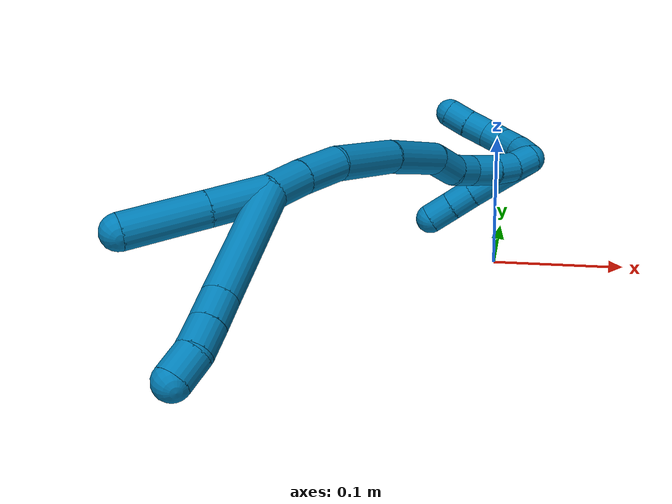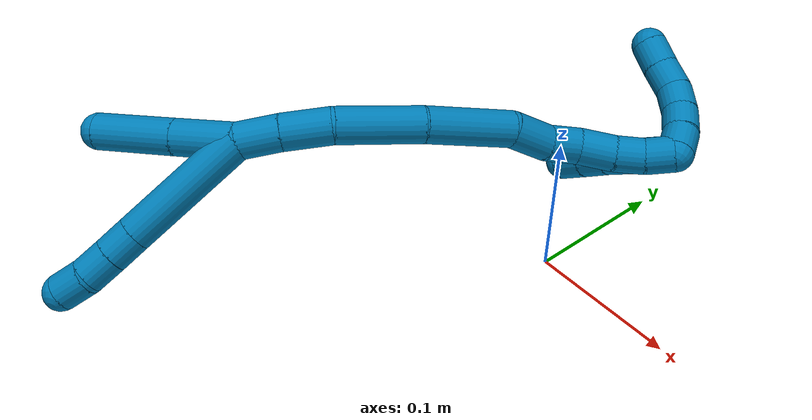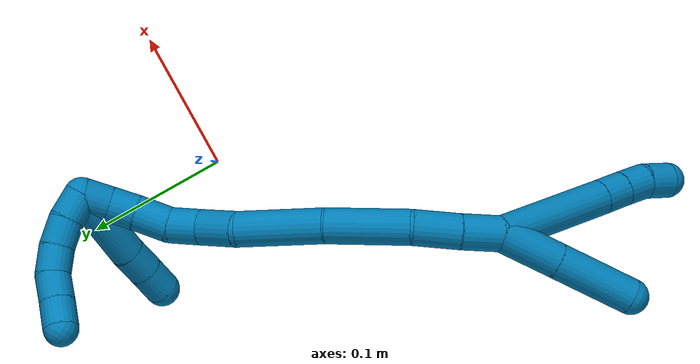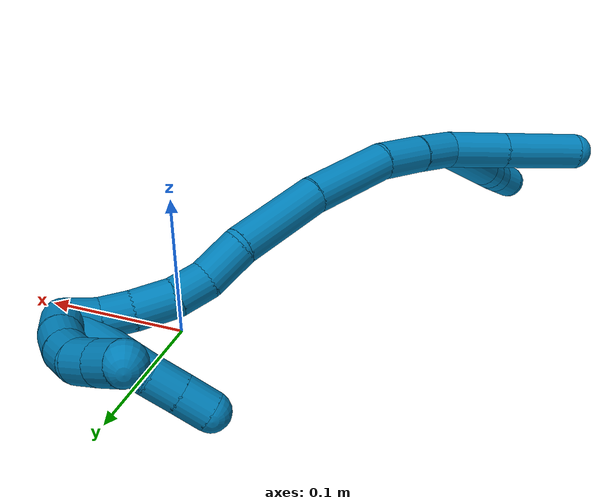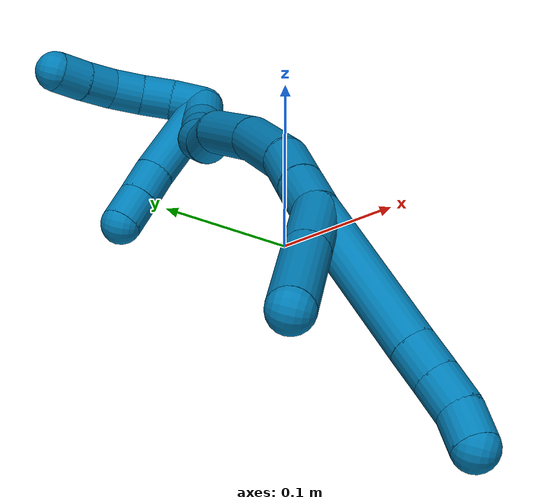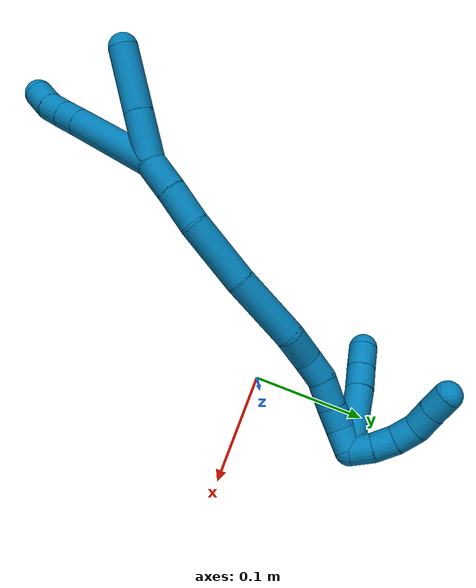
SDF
<sdf version="1.7">
 <world name="default">
  <model name="photoneo_s_sensor">
   <static>1</static>
   <pose>0 0 2 1.57079 1.57079 3.14159</pose>
   <link name="link">
    <inertial><mass>0.1</mass></inertial>
    <sensor name="sensor" type="depth">
     <update_rate>30</update_rate>
     <camera>
      <horizontal_fov>1.22</horizontal_fov>
      <image><width>1920</width><height>1200</height><format>B8G8R8</format></image>
      <clip><near>0.1</near><far>4</far></clip>
      <depth_camera><output>points</output></depth_camera>
     </camera>
     <plugin name="camera_plugin" filename="libgazebo_ros_depth_camera.so">
      <baseline>0.2</baseline>
      <alwaysOn>1</alwaysOn>
      <updateRate>0.0</updateRate>
      <cameraName>camera_ir</cameraName>
      <imageTopicName>/camera/color/image_raw</imageTopicName>
      <cameraInfoTopicName>/camera/color/camera_info</cameraInfoTopicName>
      <depthImageTopicName>/camera/depth/image_raw</depthImageTopicName>
      <depthImageCameraInfoTopicName>/camera/depth/camera_info</depthImageCameraInfoTopicName>
      <pointCloudTopicName>/camera/depth/points</pointCloudTopicName>
      <frameName>fr_optical</frameName>
      <pointCloudCutoff>0.1</pointCloudCutoff>
      <pointCloudCutoffMax>2.0</pointCloudCutoffMax>
      <distortionK1>0</distortionK1>
      <distortionK2>0</distortionK2>
      <distortionK3>0</distortionK3>
      <distortionT1>0</distortionT1>
      <distortionT2>0</distortionT2>
      <CxPrime>0</CxPrime>
      <Cx>0</Cx>
      <Cy>0</Cy>
      <focalLength>0</focalLength>
      <hackBaseline>0</hackBaseline>
     </plugin>
    </sensor>
   </link>
  </model>
  <model name="bin">
   <static>1</static>
   <link name="bottom">
    <collision name="collision-bottom">
     <pose>0 0 -0.01 0 -0 0</pose>
     <geometry><box><size>0.8 0.6 0.02</size></box></geometry>
     <surface>
      <friction><ode><mu>100</mu><mu2>100</mu2></ode></friction>
      <contact><collide_bitmask>65535</collide_bitmask></contact>
     </surface>
    </collision>
   </link>
   <link name="west_wall">
    <collision name="collision-west_wall">
     <pose>-0.41 0 0.1 0 -0 0</pose>
     <geometry><box><size>0.02 0.6 0.2</size></box></geometry>
     <surface>
      <friction><ode><mu>100</mu><mu2>100</mu2></ode></friction>
      <contact><collide_bitmask>65535</collide_bitmask></contact>
     </surface>
    </collision>
   </link>
   <link name="east_wall">
    <collision name="collision-east_wall">
     <pose>0.41 0 0.1 0 -0 0</pose>
     <geometry><box><size>0.02 0.6 0.2</size></box></geometry>
     <surface>
      <friction><ode><mu>100</mu><mu2>100</mu2></ode></friction>
      <contact><collide_bitmask>65535</collide_bitmask></contact>
     </surface>
    </collision>
   </link>
   <link name="south_wall">
    <collision name="collision-south_wall">
     <pose>0 -0.31 0.1 0 -0 0</pose>
     <geometry><box><size>0.8 0.02 0.2</size></box></geometry>
     <surface>
      <friction><ode><mu>100</mu><mu2>100</mu2></ode></friction>
      <contact><collide_bitmask>65535</collide_bitmask></contact>
     </surface>
    </collision>
   </link>
   <link name="north_wall">
    <collision name="collision-north_wall">
     <pose>0 0.31 0.1 0 -0 0</pose>
     <geometry><box><size>0.8 0.02 0.2</size></box></geometry>
     <surface>
      <friction><ode><mu>100</mu><mu2>100</mu2></ode></friction>
      <contact><collide_bitmask>65535</collide_bitmask></contact>
     </surface>
    </collision>
   </link>
  </model>
  <model name="9">
   <static>0</static>
   <link name="9">
    <collision name="collision-cylinder-e_1_2_8">
     <pose>-0.00435 -0.02983 0.03221 0.747044 -0.098775 -0.038738</pose>
     <geometry><cylinder><radius>0.0125</radius><length>0.088233</length></cylinder></geometry>
     <surface>
      <friction><ode><mu>1.16</mu><mu2>1.16</mu2><slip1>0</slip1><slip2>0</slip2></ode></friction>
      <contact><ode><kp>1e+06</kp><kd>1</kd><max_vel>0</max_vel><min_depth>0.001</min_depth></ode></contact>
     </surface>
    </collision>
    <visual name="visual-cylinder-e_1_2_8">
     <pose>-0.00435 -0.02983 0.03221 0.747044 -0.098775 -0.038738</pose>
     <geometry><cylinder><radius>0.0125</radius><length>0.088233</length></cylinder></geometry>
     <material><ambient>0 0.490196 0.709804 1</ambient></material>
    </visual>
    <collision name="collision-cylinder-e_2_8_9">
     <pose>-0.00968 -0.066446 0.071956 0.733119 -0.096293 -0.036992</pose>
     <geometry><cylinder><radius>0.0125</radius><length>0.020376</length></cylinder></geometry>
     <surface>
      <friction><ode><mu>1.16</mu><mu2>1.16</mu2><slip1>0</slip1><slip2>0</slip2></ode></friction>
      <contact><ode><kp>1e+06</kp><kd>1</kd><max_vel>0</max_vel><min_depth>0.001</min_depth></ode></contact>
     </surface>
    </collision>
    <visual name="visual-cylinder-e_2_8_9">
     <pose>-0.00968 -0.066446 0.071956 0.733119 -0.096293 -0.036992</pose>
     <geometry><cylinder><radius>0.0125</radius><length>0.020376</length></cylinder></geometry>
     <material><ambient>0 0.490196 0.709804 1</ambient></material>
    </visual>
    <collision name="collision-cylinder-e_3_9_10">
     <pose>-0.011788 -0.08018 0.086973 0.74854 -0.110029 -0.043254</pose>
     <geometry><cylinder><radius>0.0125</radius><length>0.020545</length></cylinder></geometry>
     <surface>
      <friction><ode><mu>1.16</mu><mu2>1.16</mu2><slip1>0</slip1><slip2>0</slip2></ode></friction>
      <contact><ode><kp>1e+06</kp><kd>1</kd><max_vel>0</max_vel><min_depth>0.001</min_depth></ode></contact>
     </surface>
    </collision>
    <visual name="visual-cylinder-e_3_9_10">
     <pose>-0.011788 -0.08018 0.086973 0.74854 -0.110029 -0.043254</pose>
     <geometry><cylinder><radius>0.0125</radius><length>0.020545</length></cylinder></geometry>
     <material><ambient>0 0.490196 0.709804 1</ambient></material>
    </visual>
    <collision name="collision-cylinder-e_4_10_6">
     <pose>-0.014979 -0.095608 0.100155 0.978845 -0.199206 -0.106358</pose>
     <geometry><cylinder><radius>0.0125</radius><length>0.020847</length></cylinder></geometry>
     <surface>
      <friction><ode><mu>1.16</mu><mu2>1.16</mu2><slip1>0</slip1><slip2>0</slip2></ode></friction>
      <contact><ode><kp>1e+06</kp><kd>1</kd><max_vel>0</max_vel><min_depth>0.001</min_depth></ode></contact>
     </surface>
    </collision>
    <visual name="visual-cylinder-e_4_10_6">
     <pose>-0.014979 -0.095608 0.100155 0.978845 -0.199206 -0.106358</pose>
     <geometry><cylinder><radius>0.0125</radius><length>0.020847</length></cylinder></geometry>
     <material><ambient>0 0.490196 0.709804 1</ambient></material>
    </visual>
    <collision name="collision-cylinder-e_1_2_11">
     <pose>-0.013077 -0.016773 0.002215 1.43951 -0.658038 -0.581642</pose>
     <geometry><cylinder><radius>0.0125</radius><length>0.042766</length></cylinder></geometry>
     <surface>
      <friction><ode><mu>1.16</mu><mu2>1.16</mu2><slip1>0</slip1><slip2>0</slip2></ode></friction>
      <contact><ode><kp>1e+06</kp><kd>1</kd><max_vel>0</max_vel><min_depth>0.001</min_depth></ode></contact>
     </surface>
    </collision>
    <visual name="visual-cylinder-e_1_2_11">
     <pose>-0.013077 -0.016773 0.002215 1.43951 -0.658038 -0.581642</pose>
     <geometry><cylinder><radius>0.0125</radius><length>0.042766</length></cylinder></geometry>
     <material><ambient>0 0.490196 0.709804 1</ambient></material>
    </visual>
    <collision name="collision-cylinder-e_2_11_5">
     <pose>-0.04375 -0.055927 0.007322 1.4423 -0.662237 -0.586973</pose>
     <geometry><cylinder><radius>0.0125</radius><length>0.057234</length></cylinder></geometry>
     <surface>
      <friction><ode><mu>1.16</mu><mu2>1.16</mu2><slip1>0</slip1><slip2>0</slip2></ode></friction>
      <contact><ode><kp>1e+06</kp><kd>1</kd><max_vel>0</max_vel><min_depth>0.001</min_depth></ode></contact>
     </surface>
    </collision>
    <visual name="visual-cylinder-e_2_11_5">
     <pose>-0.04375 -0.055927 0.007322 1.4423 -0.662237 -0.586973</pose>
     <geometry><cylinder><radius>0.0125</radius><length>0.057234</length></cylinder></geometry>
     <material><ambient>0 0.490196 0.709804 1</ambient></material>
    </visual>
    <collision name="collision-cylinder-e_1_2_12">
     <pose>0.008123 0.009772 -0.006872 -2.1837 0.597161 -1.0701</pose>
     <geometry><cylinder><radius>0.0125</radius><length>0.028893</length></cylinder></geometry>
     <surface>
      <friction><ode><mu>1.16</mu><mu2>1.16</mu2><slip1>0</slip1><slip2>0</slip2></ode></friction>
      <contact><ode><kp>1e+06</kp><kd>1</kd><max_vel>0</max_vel><min_depth>0.001</min_depth></ode></contact>
     </surface>
    </collision>
    <visual name="visual-cylinder-e_1_2_12">
     <pose>0.008123 0.009772 -0.006872 -2.1837 0.597161 -1.0701</pose>
     <geometry><cylinder><radius>0.0125</radius><length>0.028893</length></cylinder></geometry>
     <material><ambient>0 0.490196 0.709804 1</ambient></material>
    </visual>
    <collision name="collision-cylinder-e_2_12_13">
     <pose>0.026506 0.030596 -0.021079 -2.15669 0.658337 -1.13389</pose>
     <geometry><cylinder><radius>0.0125</radius><length>0.033541</length></cylinder></geometry>
     <surface>
      <friction><ode><mu>1.16</mu><mu2>1.16</mu2><slip1>0</slip1><slip2>0</slip2></ode></friction>
      <contact><ode><kp>1e+06</kp><kd>1</kd><max_vel>0</max_vel><min_depth>0.001</min_depth></ode></contact>
     </surface>
    </collision>
    <visual name="visual-cylinder-e_2_12_13">
     <pose>0.026506 0.030596 -0.021079 -2.15669 0.658337 -1.13389</pose>
     <geometry><cylinder><radius>0.0125</radius><length>0.033541</length></cylinder></geometry>
     <material><ambient>0 0.490196 0.709804 1</ambient></material>
    </visual>
    <collision name="collision-cylinder-e_3_13_14">
     <pose>0.058688 0.055938 -0.042182 -2.33764 0.83514 -1.61346</pose>
     <geometry><cylinder><radius>0.0125</radius><length>0.059137</length></cylinder></geometry>
     <surface>
      <friction><ode><mu>1.16</mu><mu2>1.16</mu2><slip1>0</slip1><slip2>0</slip2></ode></friction>
      <contact><ode><kp>1e+06</kp><kd>1</kd><max_vel>0</max_vel><min_depth>0.001</min_depth></ode></contact>
     </surface>
    </collision>
    <visual name="visual-cylinder-e_3_13_14">
     <pose>0.058688 0.055938 -0.042182 -2.33764 0.83514 -1.61346</pose>
     <geometry><cylinder><radius>0.0125</radius><length>0.059137</length></cylinder></geometry>
     <material><ambient>0 0.490196 0.709804 1</ambient></material>
    </visual>
    <collision name="collision-cylinder-e_4_14_15">
     <pose>0.105012 0.081518 -0.070903 -2.49484 0.915958 -1.94739</pose>
     <geometry><cylinder><radius>0.0125</radius><length>0.061531</length></cylinder></geometry>
     <surface>
      <friction><ode><mu>1.16</mu><mu2>1.16</mu2><slip1>0</slip1><slip2>0</slip2></ode></friction>
      <contact><ode><kp>1e+06</kp><kd>1</kd><max_vel>0</max_vel><min_depth>0.001</min_depth></ode></contact>
     </surface>
    </collision>
    <visual name="visual-cylinder-e_4_14_15">
     <pose>0.105012 0.081518 -0.070903 -2.49484 0.915958 -1.94739</pose>
     <geometry><cylinder><radius>0.0125</radius><length>0.061531</length></cylinder></geometry>
     <material><ambient>0 0.490196 0.709804 1</ambient></material>
    </visual>
    <collision name="collision-cylinder-e_5_15_16">
     <pose>0.143015 0.095169 -0.090468 -2.66853 1.20691 -2.46872</pose>
     <geometry><cylinder><radius>0.0125</radius><length>0.029109</length></cylinder></geometry>
     <surface>
      <friction><ode><mu>1.16</mu><mu2>1.16</mu2><slip1>0</slip1><slip2>0</slip2></ode></friction>
      <contact><ode><kp>1e+06</kp><kd>1</kd><max_vel>0</max_vel><min_depth>0.001</min_depth></ode></contact>
     </surface>
    </collision>
    <visual name="visual-cylinder-e_5_15_16">
     <pose>0.143015 0.095169 -0.090468 -2.66853 1.20691 -2.46872</pose>
     <geometry><cylinder><radius>0.0125</radius><length>0.029109</length></cylinder></geometry>
     <material><ambient>0 0.490196 0.709804 1</ambient></material>
    </visual>
    <collision name="collision-cylinder-e_6_16_17">
     <pose>0.165653 0.102385 -0.099579 -2.31822 0.938483 -1.71968</pose>
     <geometry><cylinder><radius>0.0125</radius><length>0.022405</length></cylinder></geometry>
     <surface>
      <friction><ode><mu>1.16</mu><mu2>1.16</mu2><slip1>0</slip1><slip2>0</slip2></ode></friction>
      <contact><ode><kp>1e+06</kp><kd>1</kd><max_vel>0</max_vel><min_depth>0.001</min_depth></ode></contact>
     </surface>
    </collision>
    <visual name="visual-cylinder-e_6_16_17">
     <pose>0.165653 0.102385 -0.099579 -2.31822 0.938483 -1.71968</pose>
     <geometry><cylinder><radius>0.0125</radius><length>0.022405</length></cylinder></geometry>
     <material><ambient>0 0.490196 0.709804 1</ambient></material>
    </visual>
    <collision name="collision-cylinder-e_7_17_18">
     <pose>0.184728 0.114543 -0.106072 -1.83717 0.92476 -1.15645</pose>
     <geometry><cylinder><radius>0.0125</radius><length>0.025145</length></cylinder></geometry>
     <surface>
      <friction><ode><mu>1.16</mu><mu2>1.16</mu2><slip1>0</slip1><slip2>0</slip2></ode></friction>
      <contact><ode><kp>1e+06</kp><kd>1</kd><max_vel>0</max_vel><min_depth>0.001</min_depth></ode></contact>
     </surface>
    </collision>
    <visual name="visual-cylinder-e_7_17_18">
     <pose>0.184728 0.114543 -0.106072 -1.83717 0.92476 -1.15645</pose>
     <geometry><cylinder><radius>0.0125</radius><length>0.025145</length></cylinder></geometry>
     <material><ambient>0 0.490196 0.709804 1</ambient></material>
    </visual>
    <collision name="collision-cylinder-e_8_18_19">
     <pose>0.202023 0.128509 -0.11021 -1.88222 0.803282 -1.05552</pose>
     <geometry><cylinder><radius>0.0125</radius><length>0.020165</length></cylinder></geometry>
     <surface>
      <friction><ode><mu>1.16</mu><mu2>1.16</mu2><slip1>0</slip1><slip2>0</slip2></ode></friction>
      <contact><ode><kp>1e+06</kp><kd>1</kd><max_vel>0</max_vel><min_depth>0.001</min_depth></ode></contact>
     </surface>
    </collision>
    <visual name="visual-cylinder-e_8_18_19">
     <pose>0.202023 0.128509 -0.11021 -1.88222 0.803282 -1.05552</pose>
     <geometry><cylinder><radius>0.0125</radius><length>0.020165</length></cylinder></geometry>
     <material><ambient>0 0.490196 0.709804 1</ambient></material>
    </visual>
    <collision name="collision-cylinder-e_9_19_1">
     <pose>0.214624 0.143309 -0.114803 -1.8631 0.561638 -0.740268</pose>
     <geometry><cylinder><radius>0.0125</radius><length>0.020074</length></cylinder></geometry>
     <surface>
      <friction><ode><mu>1.16</mu><mu2>1.16</mu2><slip1>0</slip1><slip2>0</slip2></ode></friction>
      <contact><ode><kp>1e+06</kp><kd>1</kd><max_vel>0</max_vel><min_depth>0.001</min_depth></ode></contact>
     </surface>
    </collision>
    <visual name="visual-cylinder-e_9_19_1">
     <pose>0.214624 0.143309 -0.114803 -1.8631 0.561638 -0.740268</pose>
     <geometry><cylinder><radius>0.0125</radius><length>0.020074</length></cylinder></geometry>
     <material><ambient>0 0.490196 0.709804 1</ambient></material>
    </visual>
    <collision name="collision-cylinder-e_1_1_20">
     <pose>0.220104 0.151307 -0.127249 3.12795 0.013444 1.55586</pose>
     <geometry><cylinder><radius>0.0125</radius><length>0.02</length></cylinder></geometry>
     <surface>
      <friction><ode><mu>1.16</mu><mu2>1.16</mu2><slip1>0</slip1><slip2>0</slip2></ode></friction>
      <contact><ode><kp>1e+06</kp><kd>1</kd><max_vel>0</max_vel><min_depth>0.001</min_depth></ode></contact>
     </surface>
    </collision>
    <visual name="visual-cylinder-e_1_1_20">
     <pose>0.220104 0.151307 -0.127249 3.12795 0.013444 1.55586</pose>
     <geometry><cylinder><radius>0.0125</radius><length>0.02</length></cylinder></geometry>
     <material><ambient>0 0.490196 0.709804 1</ambient></material>
    </visual>
    <collision name="collision-cylinder-e_2_20_21">
     <pose>0.21886 0.149571 -0.147022 2.97938 -0.138293 -1.41132</pose>
     <geometry><cylinder><radius>0.0125</radius><length>0.02</length></cylinder></geometry>
     <surface>
      <friction><ode><mu>1.16</mu><mu2>1.16</mu2><slip1>0</slip1><slip2>0</slip2></ode></friction>
      <contact><ode><kp>1e+06</kp><kd>1</kd><max_vel>0</max_vel><min_depth>0.001</min_depth></ode></contact>
     </surface>
    </collision>
    <visual name="visual-cylinder-e_2_20_21">
     <pose>0.21886 0.149571 -0.147022 2.97938 -0.138293 -1.41132</pose>
     <geometry><cylinder><radius>0.0125</radius><length>0.02</length></cylinder></geometry>
     <material><ambient>0 0.490196 0.709804 1</ambient></material>
    </visual>
    <collision name="collision-cylinder-e_3_21_22">
     <pose>0.214098 0.145847 -0.165964 2.91384 -0.345157 -1.98023</pose>
     <geometry><cylinder><radius>0.0125</radius><length>0.02</length></cylinder></geometry>
     <surface>
      <friction><ode><mu>1.16</mu><mu2>1.16</mu2><slip1>0</slip1><slip2>0</slip2></ode></friction>
      <contact><ode><kp>1e+06</kp><kd>1</kd><max_vel>0</max_vel><min_depth>0.001</min_depth></ode></contact>
     </surface>
    </collision>
    <visual name="visual-cylinder-e_3_21_22">
     <pose>0.214098 0.145847 -0.165964 2.91384 -0.345157 -1.98023</pose>
     <geometry><cylinder><radius>0.0125</radius><length>0.02</length></cylinder></geometry>
     <material><ambient>0 0.490196 0.709804 1</ambient></material>
    </visual>
    <collision name="collision-cylinder-e_4_22_23">
     <pose>0.204529 0.140936 -0.182477 2.77913 -0.666986 -2.16853</pose>
     <geometry><cylinder><radius>0.0125</radius><length>0.02</length></cylinder></geometry>
     <surface>
      <friction><ode><mu>1.16</mu><mu2>1.16</mu2><slip1>0</slip1><slip2>0</slip2></ode></friction>
      <contact><ode><kp>1e+06</kp><kd>1</kd><max_vel>0</max_vel><min_depth>0.001</min_depth></ode></contact>
     </surface>
    </collision>
    <visual name="visual-cylinder-e_4_22_23">
     <pose>0.204529 0.140936 -0.182477 2.77913 -0.666986 -2.16853</pose>
     <geometry><cylinder><radius>0.0125</radius><length>0.02</length></cylinder></geometry>
     <material><ambient>0 0.490196 0.709804 1</ambient></material>
    </visual>
    <collision name="collision-cylinder-e_5_23_4">
     <pose>0.192032 0.135901 -0.197248 2.84749 -0.682864 -2.35173</pose>
     <geometry><cylinder><radius>0.0125</radius><length>0.02</length></cylinder></geometry>
     <surface>
      <friction><ode><mu>1.16</mu><mu2>1.16</mu2><slip1>0</slip1><slip2>0</slip2></ode></friction>
      <contact><ode><kp>1e+06</kp><kd>1</kd><max_vel>0</max_vel><min_depth>0.001</min_depth></ode></contact>
     </surface>
    </collision>
    <visual name="visual-cylinder-e_5_23_4">
     <pose>0.192032 0.135901 -0.197248 2.84749 -0.682864 -2.35173</pose>
     <geometry><cylinder><radius>0.0125</radius><length>0.02</length></cylinder></geometry>
     <material><ambient>0 0.490196 0.709804 1</ambient></material>
    </visual>
    <collision name="collision-cylinder-e_1_1_24">
     <pose>0.216116 0.123412 -0.124274 1.81628 -0.132597 -0.169755</pose>
     <geometry><cylinder><radius>0.0125</radius><length>0.058307</length></cylinder></geometry>
     <surface>
      <friction><ode><mu>1.16</mu><mu2>1.16</mu2><slip1>0</slip1><slip2>0</slip2></ode></friction>
      <contact><ode><kp>1e+06</kp><kd>1</kd><max_vel>0</max_vel><min_depth>0.001</min_depth></ode></contact>
     </surface>
    </collision>
    <visual name="visual-cylinder-e_1_1_24">
     <pose>0.216116 0.123412 -0.124274 1.81628 -0.132597 -0.169755</pose>
     <geometry><cylinder><radius>0.0125</radius><length>0.058307</length></cylinder></geometry>
     <material><ambient>0 0.490196 0.709804 1</ambient></material>
    </visual>
    <collision name="collision-cylinder-e_2_24_25">
     <pose>0.210679 0.085347 -0.132994 1.73831 -0.15428 -0.182415</pose>
     <geometry><cylinder><radius>0.0125</radius><length>0.020598</length></cylinder></geometry>
     <surface>
      <friction><ode><mu>1.16</mu><mu2>1.16</mu2><slip1>0</slip1><slip2>0</slip2></ode></friction>
      <contact><ode><kp>1e+06</kp><kd>1</kd><max_vel>0</max_vel><min_depth>0.001</min_depth></ode></contact>
     </surface>
    </collision>
    <visual name="visual-cylinder-e_2_24_25">
     <pose>0.210679 0.085347 -0.132994 1.73831 -0.15428 -0.182415</pose>
     <geometry><cylinder><radius>0.0125</radius><length>0.020598</length></cylinder></geometry>
     <material><ambient>0 0.490196 0.709804 1</ambient></material>
    </visual>
    <collision name="collision-cylinder-e_3_25_3">
     <pose>0.207504 0.065067 -0.136624 1.75729 -0.151562 -0.182675</pose>
     <geometry><cylinder><radius>0.0125</radius><length>0.021095</length></cylinder></geometry>
     <surface>
      <friction><ode><mu>1.16</mu><mu2>1.16</mu2><slip1>0</slip1><slip2>0</slip2></ode></friction>
      <contact><ode><kp>1e+06</kp><kd>1</kd><max_vel>0</max_vel><min_depth>0.001</min_depth></ode></contact>
     </surface>
    </collision>
    <visual name="visual-cylinder-e_3_25_3">
     <pose>0.207504 0.065067 -0.136624 1.75729 -0.151562 -0.182675</pose>
     <geometry><cylinder><radius>0.0125</radius><length>0.021095</length></cylinder></geometry>
     <material><ambient>0 0.490196 0.709804 1</ambient></material>
    </visual>
    <collision name="collision-sphere-3">
     <pose>0.205911 0.054821 -0.138557 0 -0 0</pose>
     <geometry><sphere><radius>0.0125</radius></sphere></geometry>
     <surface>
      <friction><ode><mu>1.16</mu><mu2>1.16</mu2><slip1>0</slip1><slip2>0</slip2></ode></friction>
      <contact><ode><kp>1e+06</kp><kd>1</kd><max_vel>0</max_vel><min_depth>0.001</min_depth></ode></contact>
     </surface>
    </collision>
    <visual name="visual-sphere-3">
     <pose>0.205911 0.054821 -0.138557 0 -0 0</pose>
     <geometry><sphere><radius>0.0125</radius></sphere></geometry>
     <material><ambient>0 0.490196 0.709804 1</ambient></material>
    </visual>
    <collision name="collision-sphere-25">
     <pose>0.209096 0.075312 -0.13469 0 -0 0</pose>
     <geometry><sphere><radius>0.0125</radius></sphere></geometry>
     <surface>
      <friction><ode><mu>1.16</mu><mu2>1.16</mu2><slip1>0</slip1><slip2>0</slip2></ode></friction>
      <contact><ode><kp>1e+06</kp><kd>1</kd><max_vel>0</max_vel><min_depth>0.001</min_depth></ode></contact>
     </surface>
    </collision>
    <visual name="visual-sphere-25">
     <pose>0.209096 0.075312 -0.13469 0 -0 0</pose>
     <geometry><sphere><radius>0.0125</radius></sphere></geometry>
     <material><ambient>0 0.490196 0.709804 1</ambient></material>
    </visual>
    <collision name="collision-sphere-24">
     <pose>0.212261 0.095381 -0.131297 0 -0 0</pose>
     <geometry><sphere><radius>0.0125</radius></sphere></geometry>
     <surface>
      <friction><ode><mu>1.16</mu><mu2>1.16</mu2><slip1>0</slip1><slip2>0</slip2></ode></friction>
      <contact><ode><kp>1e+06</kp><kd>1</kd><max_vel>0</max_vel><min_depth>0.001</min_depth></ode></contact>
     </surface>
    </collision>
    <visual name="visual-sphere-24">
     <pose>0.212261 0.095381 -0.131297 0 -0 0</pose>
     <geometry><sphere><radius>0.0125</radius></sphere></geometry>
     <material><ambient>0 0.490196 0.709804 1</ambient></material>
    </visual>
    <collision name="collision-sphere-4">
     <pose>0.185722 0.133652 -0.204673 0 -0 0</pose>
     <geometry><sphere><radius>0.0125</radius></sphere></geometry>
     <surface>
      <friction><ode><mu>1.16</mu><mu2>1.16</mu2><slip1>0</slip1><slip2>0</slip2></ode></friction>
      <contact><ode><kp>1e+06</kp><kd>1</kd><max_vel>0</max_vel><min_depth>0.001</min_depth></ode></contact>
     </surface>
    </collision>
    <visual name="visual-sphere-4">
     <pose>0.185722 0.133652 -0.204673 0 -0 0</pose>
     <geometry><sphere><radius>0.0125</radius></sphere></geometry>
     <material><ambient>0 0.490196 0.709804 1</ambient></material>
    </visual>
    <collision name="collision-sphere-23">
     <pose>0.198343 0.13815 -0.189824 0 -0 0</pose>
     <geometry><sphere><radius>0.0125</radius></sphere></geometry>
     <surface>
      <friction><ode><mu>1.16</mu><mu2>1.16</mu2><slip1>0</slip1><slip2>0</slip2></ode></friction>
      <contact><ode><kp>1e+06</kp><kd>1</kd><max_vel>0</max_vel><min_depth>0.001</min_depth></ode></contact>
     </surface>
    </collision>
    <visual name="visual-sphere-23">
     <pose>0.198343 0.13815 -0.189824 0 -0 0</pose>
     <geometry><sphere><radius>0.0125</radius></sphere></geometry>
     <material><ambient>0 0.490196 0.709804 1</ambient></material>
    </visual>
    <collision name="collision-sphere-22">
     <pose>0.210715 0.143722 -0.175131 0 -0 0</pose>
     <geometry><sphere><radius>0.0125</radius></sphere></geometry>
     <surface>
      <friction><ode><mu>1.16</mu><mu2>1.16</mu2><slip1>0</slip1><slip2>0</slip2></ode></friction>
      <contact><ode><kp>1e+06</kp><kd>1</kd><max_vel>0</max_vel><min_depth>0.001</min_depth></ode></contact>
     </surface>
    </collision>
    <visual name="visual-sphere-22">
     <pose>0.210715 0.143722 -0.175131 0 -0 0</pose>
     <geometry><sphere><radius>0.0125</radius></sphere></geometry>
     <material><ambient>0 0.490196 0.709804 1</ambient></material>
    </visual>
    <collision name="collision-sphere-21">
     <pose>0.217482 0.147971 -0.156797 0 -0 0</pose>
     <geometry><sphere><radius>0.0125</radius></sphere></geometry>
     <surface>
      <friction><ode><mu>1.16</mu><mu2>1.16</mu2><slip1>0</slip1><slip2>0</slip2></ode></friction>
      <contact><ode><kp>1e+06</kp><kd>1</kd><max_vel>0</max_vel><min_depth>0.001</min_depth></ode></contact>
     </surface>
    </collision>
    <visual name="visual-sphere-21">
     <pose>0.217482 0.147971 -0.156797 0 -0 0</pose>
     <geometry><sphere><radius>0.0125</radius></sphere></geometry>
     <material><ambient>0 0.490196 0.709804 1</ambient></material>
    </visual>
    <collision name="collision-sphere-20">
     <pose>0.220239 0.151171 -0.137248 0 -0 0</pose>
     <geometry><sphere><radius>0.0125</radius></sphere></geometry>
     <surface>
      <friction><ode><mu>1.16</mu><mu2>1.16</mu2><slip1>0</slip1><slip2>0</slip2></ode></friction>
      <contact><ode><kp>1e+06</kp><kd>1</kd><max_vel>0</max_vel><min_depth>0.001</min_depth></ode></contact>
     </surface>
    </collision>
    <visual name="visual-sphere-20">
     <pose>0.220239 0.151171 -0.137248 0 -0 0</pose>
     <geometry><sphere><radius>0.0125</radius></sphere></geometry>
     <material><ambient>0 0.490196 0.709804 1</ambient></material>
    </visual>
    <collision name="collision-sphere-11">
     <pose>-0.026154 -0.033545 0.00443 0 -0 0</pose>
     <geometry><sphere><radius>0.0125</radius></sphere></geometry>
     <surface>
      <friction><ode><mu>1.16</mu><mu2>1.16</mu2><slip1>0</slip1><slip2>0</slip2></ode></friction>
      <contact><ode><kp>1e+06</kp><kd>1</kd><max_vel>0</max_vel><min_depth>0.001</min_depth></ode></contact>
     </surface>
    </collision>
    <visual name="visual-sphere-11">
     <pose>-0.026154 -0.033545 0.00443 0 -0 0</pose>
     <geometry><sphere><radius>0.0125</radius></sphere></geometry>
     <material><ambient>0 0.490196 0.709804 1</ambient></material>
    </visual>
    <collision name="collision-sphere-6">
     <pose>-0.017041 -0.104087 0.105856 0 -0 0</pose>
     <geometry><sphere><radius>0.0125</radius></sphere></geometry>
     <surface>
      <friction><ode><mu>1.16</mu><mu2>1.16</mu2><slip1>0</slip1><slip2>0</slip2></ode></friction>
      <contact><ode><kp>1e+06</kp><kd>1</kd><max_vel>0</max_vel><min_depth>0.001</min_depth></ode></contact>
     </surface>
    </collision>
    <visual name="visual-sphere-6">
     <pose>-0.017041 -0.104087 0.105856 0 -0 0</pose>
     <geometry><sphere><radius>0.0125</radius></sphere></geometry>
     <material><ambient>0 0.490196 0.709804 1</ambient></material>
    </visual>
    <collision name="collision-sphere-10">
     <pose>-0.012916 -0.087129 0.094454 0 -0 0</pose>
     <geometry><sphere><radius>0.0125</radius></sphere></geometry>
     <surface>
      <friction><ode><mu>1.16</mu><mu2>1.16</mu2><slip1>0</slip1><slip2>0</slip2></ode></friction>
      <contact><ode><kp>1e+06</kp><kd>1</kd><max_vel>0</max_vel><min_depth>0.001</min_depth></ode></contact>
     </surface>
    </collision>
    <visual name="visual-sphere-10">
     <pose>-0.012916 -0.087129 0.094454 0 -0 0</pose>
     <geometry><sphere><radius>0.0125</radius></sphere></geometry>
     <material><ambient>0 0.490196 0.709804 1</ambient></material>
    </visual>
    <collision name="collision-sphere-9">
     <pose>-0.01066 -0.073232 0.079492 0 -0 0</pose>
     <geometry><sphere><radius>0.0125</radius></sphere></geometry>
     <surface>
      <friction><ode><mu>1.16</mu><mu2>1.16</mu2><slip1>0</slip1><slip2>0</slip2></ode></friction>
      <contact><ode><kp>1e+06</kp><kd>1</kd><max_vel>0</max_vel><min_depth>0.001</min_depth></ode></contact>
     </surface>
    </collision>
    <visual name="visual-sphere-9">
     <pose>-0.01066 -0.073232 0.079492 0 -0 0</pose>
     <geometry><sphere><radius>0.0125</radius></sphere></geometry>
     <material><ambient>0 0.490196 0.709804 1</ambient></material>
    </visual>
    <collision name="collision-sphere-2">
     <geometry><sphere><radius>0.0125</radius></sphere></geometry>
     <surface>
      <friction><ode><mu>1.16</mu><mu2>1.16</mu2><slip1>0</slip1><slip2>0</slip2></ode></friction>
      <contact><ode><kp>1e+06</kp><kd>1</kd><max_vel>0</max_vel><min_depth>0.001</min_depth></ode></contact>
     </surface>
    </collision>
    <visual name="visual-sphere-2">
     <geometry><sphere><radius>0.0125</radius></sphere></geometry>
     <material><ambient>0 0.490196 0.709804 1</ambient></material>
    </visual>
    <collision name="collision-sphere-19">
     <pose>0.209279 0.135174 -0.112355 0 -0 0</pose>
     <geometry><sphere><radius>0.0125</radius></sphere></geometry>
     <surface>
      <friction><ode><mu>1.16</mu><mu2>1.16</mu2><slip1>0</slip1><slip2>0</slip2></ode></friction>
      <contact><ode><kp>1e+06</kp><kd>1</kd><max_vel>0</max_vel><min_depth>0.001</min_depth></ode></contact>
     </surface>
    </collision>
    <visual name="visual-sphere-19">
     <pose>0.209279 0.135174 -0.112355 0 -0 0</pose>
     <geometry><sphere><radius>0.0125</radius></sphere></geometry>
     <material><ambient>0 0.490196 0.709804 1</ambient></material>
    </visual>
    <collision name="collision-sphere-8">
     <pose>-0.008701 -0.05966 0.064421 0 -0 0</pose>
     <geometry><sphere><radius>0.0125</radius></sphere></geometry>
     <surface>
      <friction><ode><mu>1.16</mu><mu2>1.16</mu2><slip1>0</slip1><slip2>0</slip2></ode></friction>
      <contact><ode><kp>1e+06</kp><kd>1</kd><max_vel>0</max_vel><min_depth>0.001</min_depth></ode></contact>
     </surface>
    </collision>
    <visual name="visual-sphere-8">
     <pose>-0.008701 -0.05966 0.064421 0 -0 0</pose>
     <geometry><sphere><radius>0.0125</radius></sphere></geometry>
     <material><ambient>0 0.490196 0.709804 1</ambient></material>
    </visual>
    <collision name="collision-sphere-5">
     <pose>-0.061346 -0.078309 0.010214 0 -0 0</pose>
     <geometry><sphere><radius>0.0125</radius></sphere></geometry>
     <surface>
      <friction><ode><mu>1.16</mu><mu2>1.16</mu2><slip1>0</slip1><slip2>0</slip2></ode></friction>
      <contact><ode><kp>1e+06</kp><kd>1</kd><max_vel>0</max_vel><min_depth>0.001</min_depth></ode></contact>
     </surface>
    </collision>
    <visual name="visual-sphere-5">
     <pose>-0.061346 -0.078309 0.010214 0 -0 0</pose>
     <geometry><sphere><radius>0.0125</radius></sphere></geometry>
     <material><ambient>0 0.490196 0.709804 1</ambient></material>
    </visual>
    <collision name="collision-sphere-12">
     <pose>0.016246 0.019543 -0.013744 0 -0 0</pose>
     <geometry><sphere><radius>0.0125</radius></sphere></geometry>
     <surface>
      <friction><ode><mu>1.16</mu><mu2>1.16</mu2><slip1>0</slip1><slip2>0</slip2></ode></friction>
      <contact><ode><kp>1e+06</kp><kd>1</kd><max_vel>0</max_vel><min_depth>0.001</min_depth></ode></contact>
     </surface>
    </collision>
    <visual name="visual-sphere-12">
     <pose>0.016246 0.019543 -0.013744 0 -0 0</pose>
     <geometry><sphere><radius>0.0125</radius></sphere></geometry>
     <material><ambient>0 0.490196 0.709804 1</ambient></material>
    </visual>
    <collision name="collision-sphere-13">
     <pose>0.036767 0.04165 -0.028414 0 -0 0</pose>
     <geometry><sphere><radius>0.0125</radius></sphere></geometry>
     <surface>
      <friction><ode><mu>1.16</mu><mu2>1.16</mu2><slip1>0</slip1><slip2>0</slip2></ode></friction>
      <contact><ode><kp>1e+06</kp><kd>1</kd><max_vel>0</max_vel><min_depth>0.001</min_depth></ode></contact>
     </surface>
    </collision>
    <visual name="visual-sphere-13">
     <pose>0.036767 0.04165 -0.028414 0 -0 0</pose>
     <geometry><sphere><radius>0.0125</radius></sphere></geometry>
     <material><ambient>0 0.490196 0.709804 1</ambient></material>
    </visual>
    <collision name="collision-sphere-14">
     <pose>0.08061 0.070227 -0.05595 0 -0 0</pose>
     <geometry><sphere><radius>0.0125</radius></sphere></geometry>
     <surface>
      <friction><ode><mu>1.16</mu><mu2>1.16</mu2><slip1>0</slip1><slip2>0</slip2></ode></friction>
      <contact><ode><kp>1e+06</kp><kd>1</kd><max_vel>0</max_vel><min_depth>0.001</min_depth></ode></contact>
     </surface>
    </collision>
    <visual name="visual-sphere-14">
     <pose>0.08061 0.070227 -0.05595 0 -0 0</pose>
     <geometry><sphere><radius>0.0125</radius></sphere></geometry>
     <material><ambient>0 0.490196 0.709804 1</ambient></material>
    </visual>
    <collision name="collision-sphere-15">
     <pose>0.129413 0.092809 -0.085856 0 -0 0</pose>
     <geometry><sphere><radius>0.0125</radius></sphere></geometry>
     <surface>
      <friction><ode><mu>1.16</mu><mu2>1.16</mu2><slip1>0</slip1><slip2>0</slip2></ode></friction>
      <contact><ode><kp>1e+06</kp><kd>1</kd><max_vel>0</max_vel><min_depth>0.001</min_depth></ode></contact>
     </surface>
    </collision>
    <visual name="visual-sphere-15">
     <pose>0.129413 0.092809 -0.085856 0 -0 0</pose>
     <geometry><sphere><radius>0.0125</radius></sphere></geometry>
     <material><ambient>0 0.490196 0.709804 1</ambient></material>
    </visual>
    <collision name="collision-sphere-16">
     <pose>0.156616 0.097529 -0.095079 0 -0 0</pose>
     <geometry><sphere><radius>0.0125</radius></sphere></geometry>
     <surface>
      <friction><ode><mu>1.16</mu><mu2>1.16</mu2><slip1>0</slip1><slip2>0</slip2></ode></friction>
      <contact><ode><kp>1e+06</kp><kd>1</kd><max_vel>0</max_vel><min_depth>0.001</min_depth></ode></contact>
     </surface>
    </collision>
    <visual name="visual-sphere-16">
     <pose>0.156616 0.097529 -0.095079 0 -0 0</pose>
     <geometry><sphere><radius>0.0125</radius></sphere></geometry>
     <material><ambient>0 0.490196 0.709804 1</ambient></material>
    </visual>
    <collision name="collision-sphere-17">
     <pose>0.17469 0.107241 -0.10408 0 -0 0</pose>
     <geometry><sphere><radius>0.0125</radius></sphere></geometry>
     <surface>
      <friction><ode><mu>1.16</mu><mu2>1.16</mu2><slip1>0</slip1><slip2>0</slip2></ode></friction>
      <contact><ode><kp>1e+06</kp><kd>1</kd><max_vel>0</max_vel><min_depth>0.001</min_depth></ode></contact>
     </surface>
    </collision>
    <visual name="visual-sphere-17">
     <pose>0.17469 0.107241 -0.10408 0 -0 0</pose>
     <geometry><sphere><radius>0.0125</radius></sphere></geometry>
     <material><ambient>0 0.490196 0.709804 1</ambient></material>
    </visual>
    <collision name="collision-sphere-18">
     <pose>0.194767 0.121845 -0.108065 0 -0 0</pose>
     <geometry><sphere><radius>0.0125</radius></sphere></geometry>
     <surface>
      <friction><ode><mu>1.16</mu><mu2>1.16</mu2><slip1>0</slip1><slip2>0</slip2></ode></friction>
      <contact><ode><kp>1e+06</kp><kd>1</kd><max_vel>0</max_vel><min_depth>0.001</min_depth></ode></contact>
     </surface>
    </collision>
    <visual name="visual-sphere-18">
     <pose>0.194767 0.121845 -0.108065 0 -0 0</pose>
     <geometry><sphere><radius>0.0125</radius></sphere></geometry>
     <material><ambient>0 0.490196 0.709804 1</ambient></material>
    </visual>
    <collision name="collision-sphere-1">
     <pose>0.21997 0.151443 -0.117251 0 -0 0</pose>
     <geometry><sphere><radius>0.0125</radius></sphere></geometry>
     <surface>
      <friction><ode><mu>1.16</mu><mu2>1.16</mu2><slip1>0</slip1><slip2>0</slip2></ode></friction>
      <contact><ode><kp>1e+06</kp><kd>1</kd><max_vel>0</max_vel><min_depth>0.001</min_depth></ode></contact>
     </surface>
    </collision>
    <visual name="visual-sphere-1">
     <pose>0.21997 0.151443 -0.117251 0 -0 0</pose>
     <geometry><sphere><radius>0.0125</radius></sphere></geometry>
     <material><ambient>0 0.490196 0.709804 1</ambient></material>
    </visual>
    <inertial>
     <pose>0.093426 0.048398 -0.053856 0 -0 0</pose>
     <mass>0.75</mass>
     <inertia><ixx>5.1e-05</ixx><ixy>0</ixy><ixz>0</ixz><iyy>2.5e-05</iyy><iyz>0</iyz><izz>3.5e-05</izz></inertia>
    </inertial>
   </link>
   <pose>-0.140265 -0.148727 0.091729 1.82523 0.775075 0.706906</pose>
  </model>
 </world>
</sdf>
